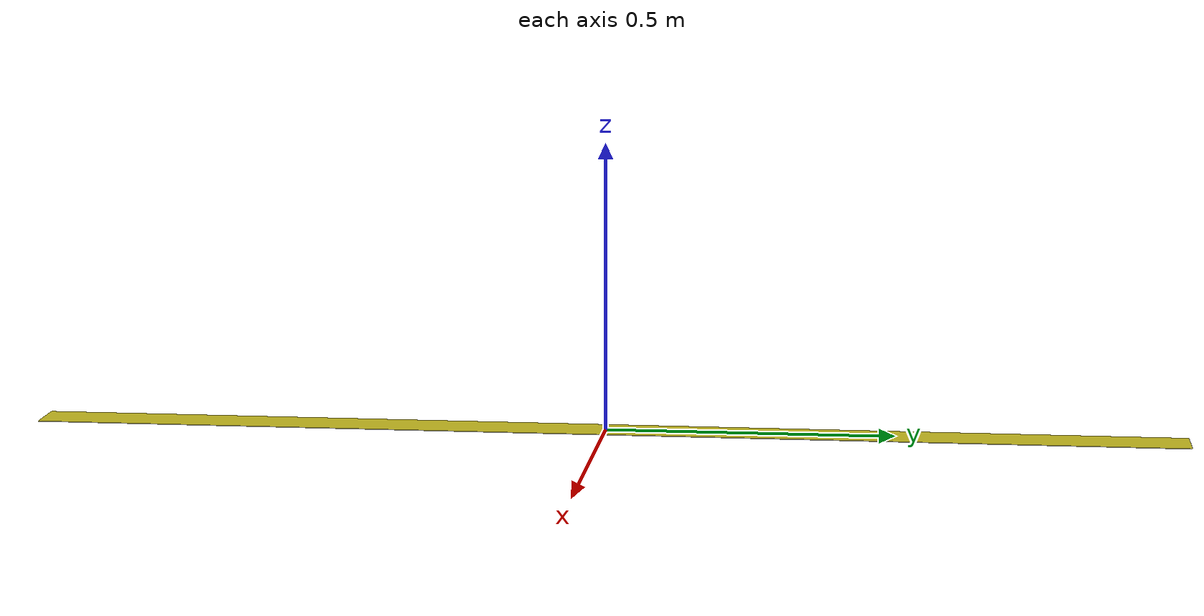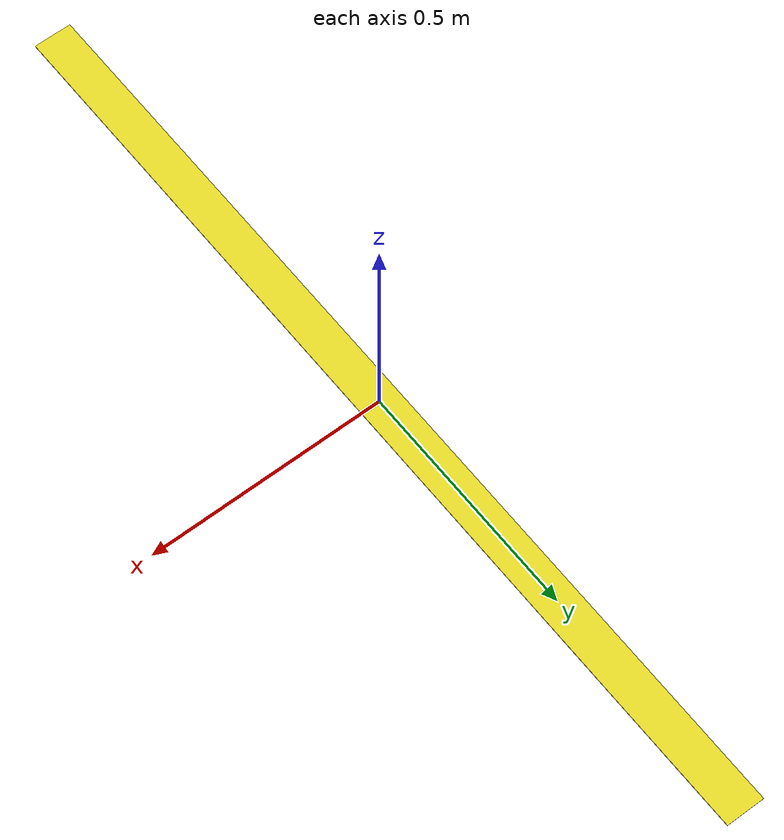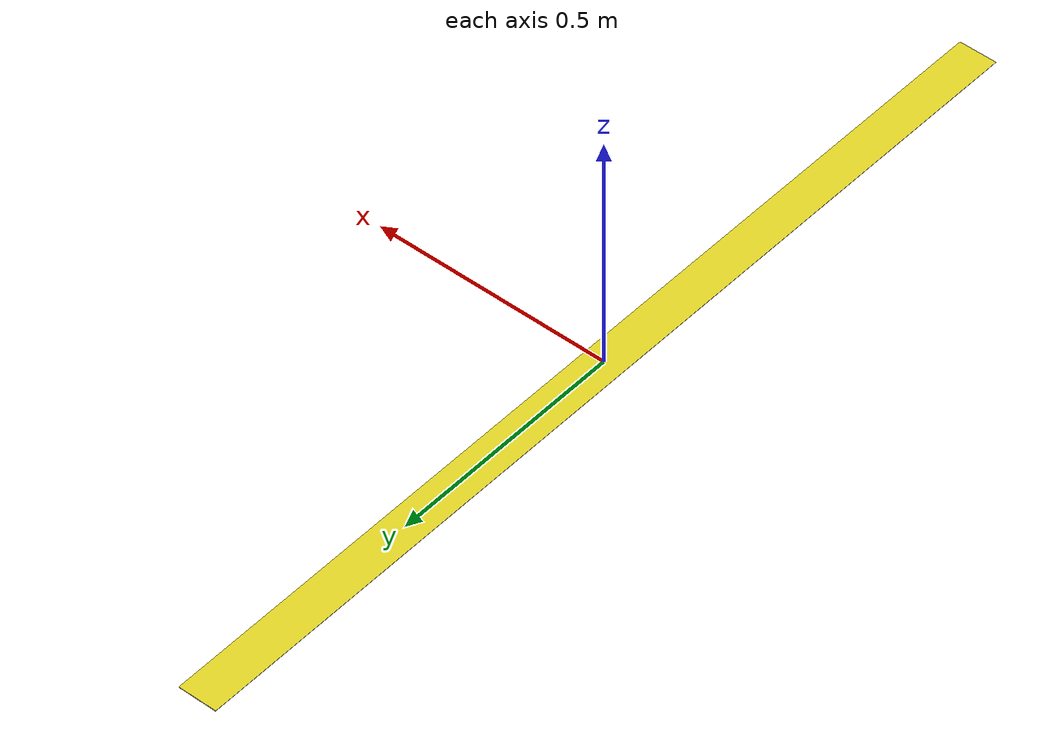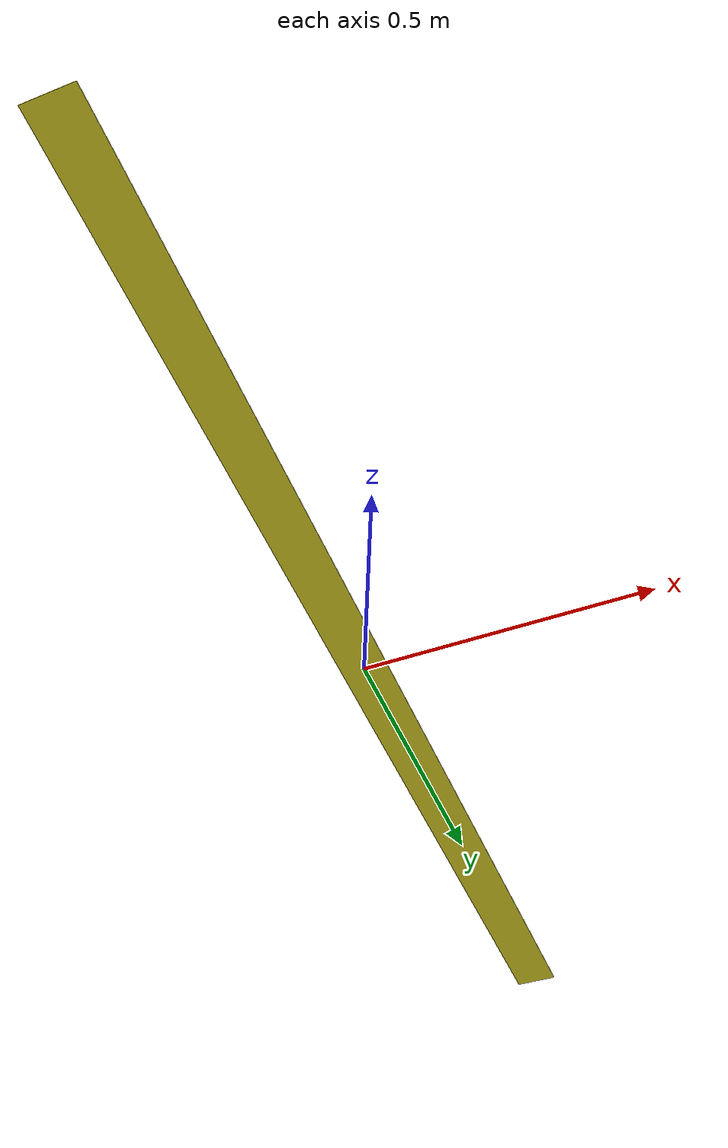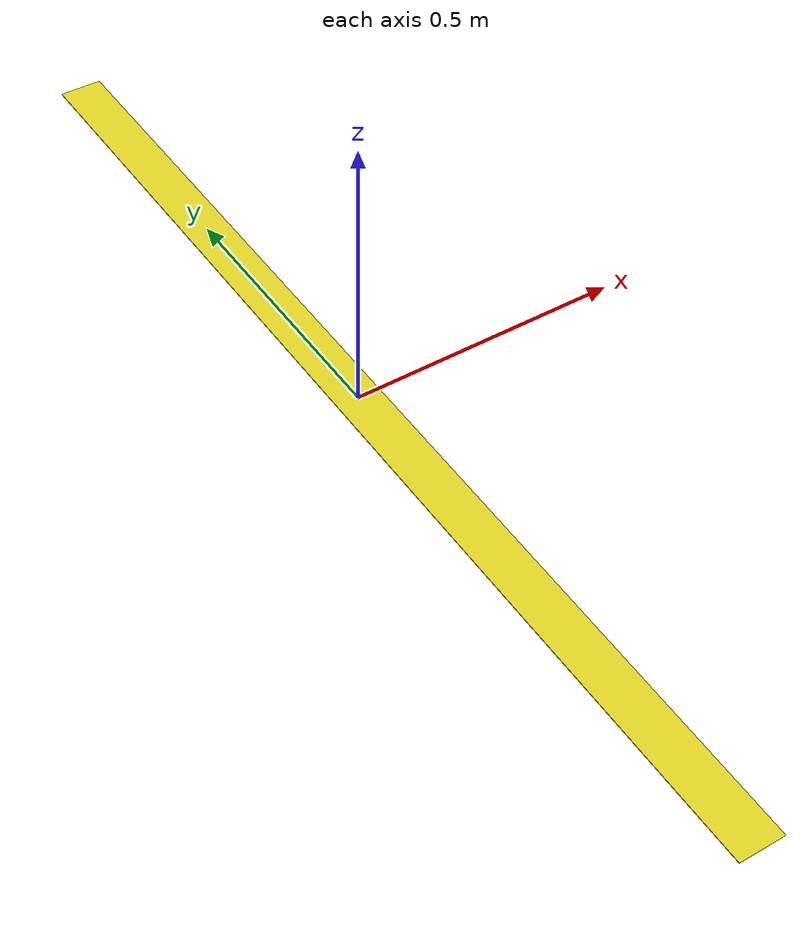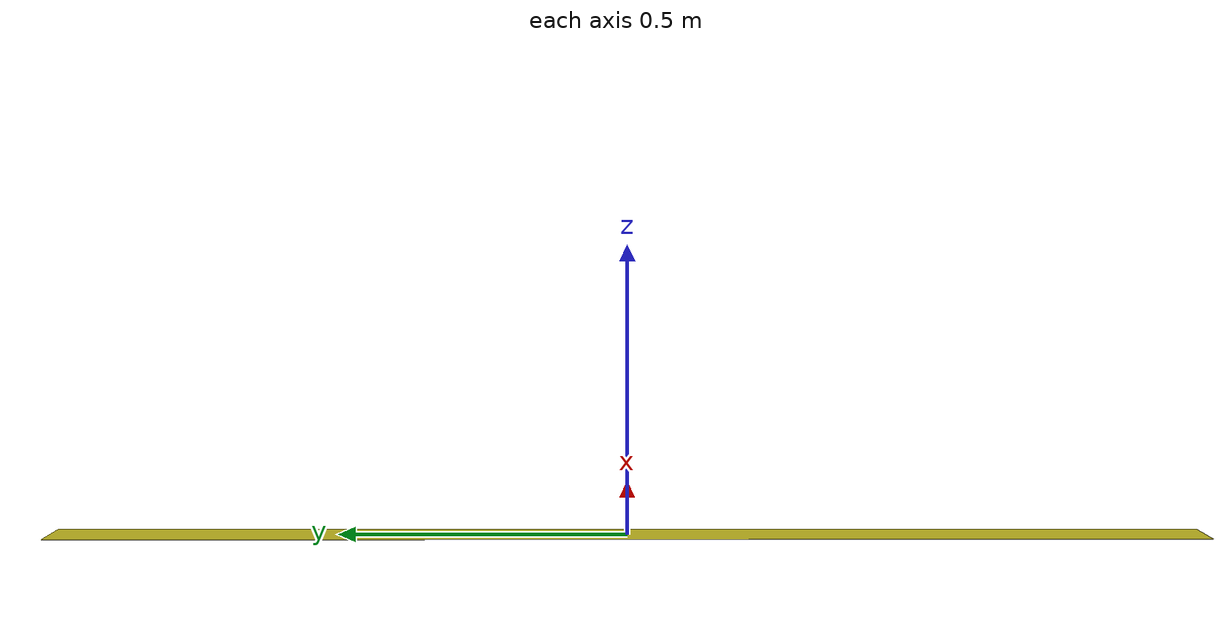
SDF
<?xml version='1.0'?>
<sdf version='1.6'>
  <model name='lane_yellow'>
    <link name='main'>
    <pose frame=''>0 0 0 0 0 0</pose>
      <visual name='main_Visual'>
        <geometry>
          <box>
          <size>0.08 2 0.001</size>
          </box>
        </geometry>
           <material>
          <script>
            <name>Gazebo/Yellow</name>
            <uri>file://media/materials/scripts/gazebo.material</uri>
          </script>
        </material>
      </visual>
     </link>
    <static>1</static>
  </model>
</sdf>
